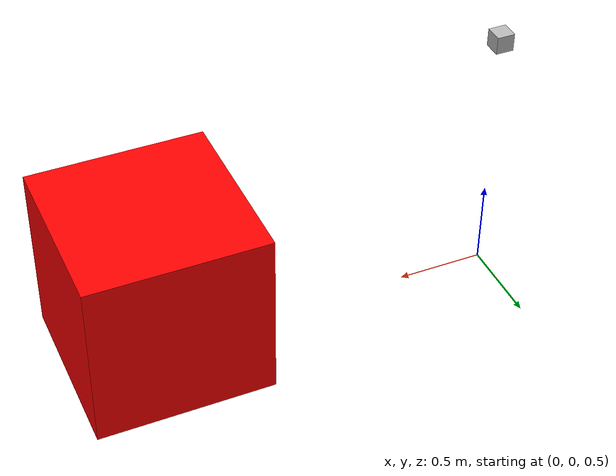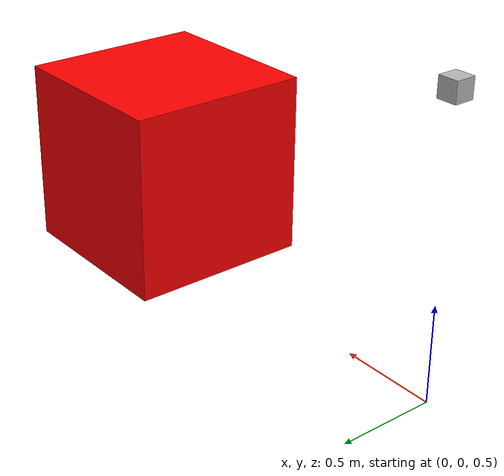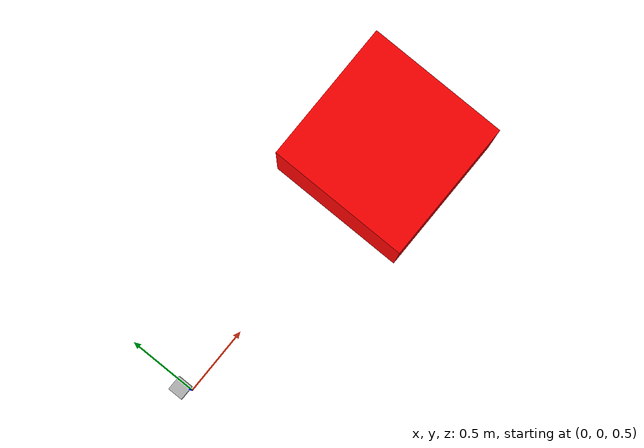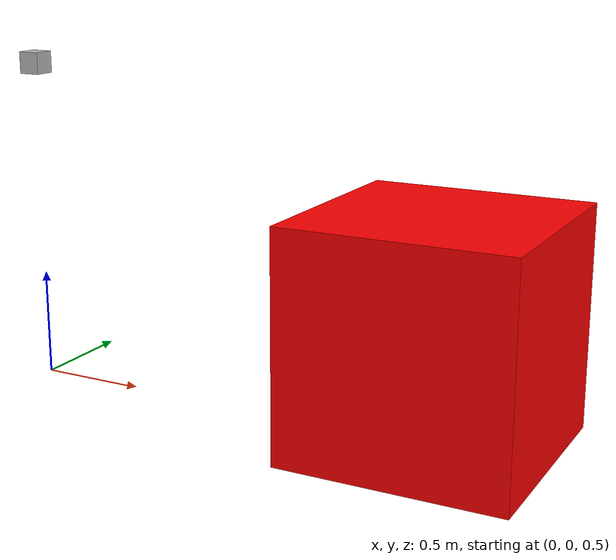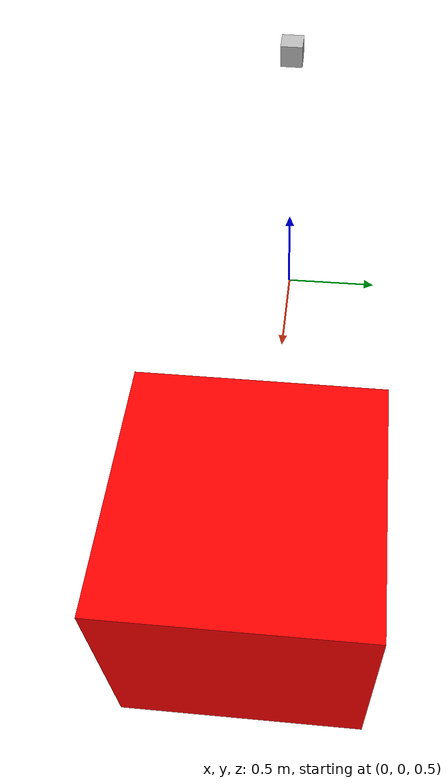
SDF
<?xml version="1.0"?>
<sdf version="1.9">
<world name="test">
    <physics name="1ms" type="ignored">
        <max_step_size>0.001</max_step_size>
        <real_time_factor>1.0</real_time_factor>
    </physics>
    <plugin filename="gz-sim-physics-system" name="gz::sim::systems::Physics"></plugin>
    <plugin filename="gz-sim-user-commands-system" name="gz::sim::systems::UserCommands"></plugin>
    <plugin filename="gz-sim-scene-broadcaster-system" name="gz::sim::systems::SceneBroadcaster"></plugin>
    <plugin filename="gz-sim-sensors-system" name="gz::sim::systems::Sensors">
        <render_engine>ogre2</render_engine>
    </plugin>

    <model name="cam">
        <static>true</static>
        <pose>0 0 2 0 1.57 0</pose>
        <link name="link">
            <visual name="v">
                <geometry><box><size>0.1 0.1 0.1</size></box></geometry>
            </visual>
            <sensor name="c" type="camera">
                <camera>
                    <horizontal_fov>1.047</horizontal_fov>
                    <image><width>28</width><height>28</height><format>L8</format></image>
                    <clip><near>0.1</near><far>100</far></clip>
                </camera>
                <always_on>1</always_on>
                <update_rate>10</update_rate>
            </sensor>
        </link>
    </model>

    <model name="box">
        <static>true</static>
        <pose>2 0 1 0 0 0</pose>
        <link name="l">
            <visual name="v">
                <geometry><box><size>1 1 1</size></box></geometry>
                <material><ambient>1 0 0 1</ambient><diffuse>1 0 0 1</diffuse></material>
            </visual>
        </link>
    </model>
</world>
</sdf>
